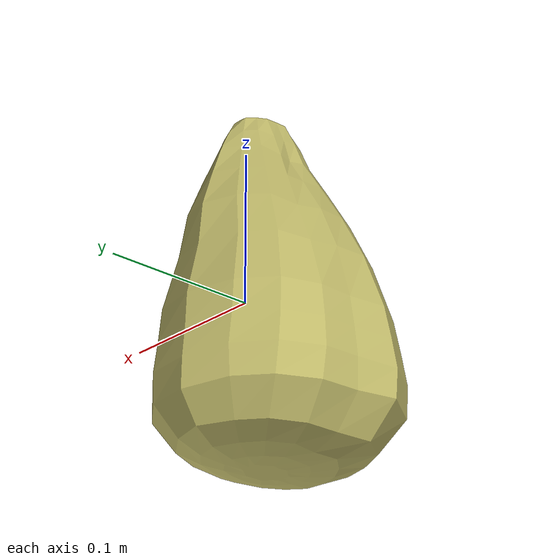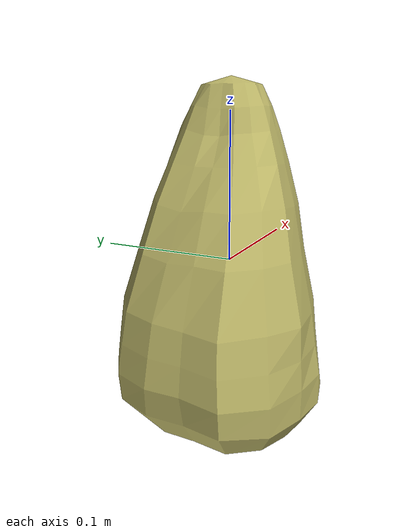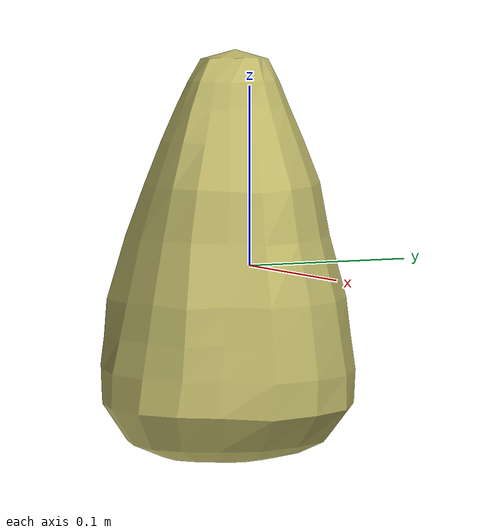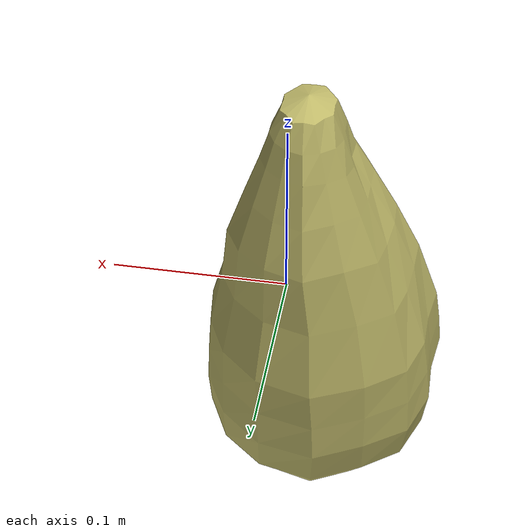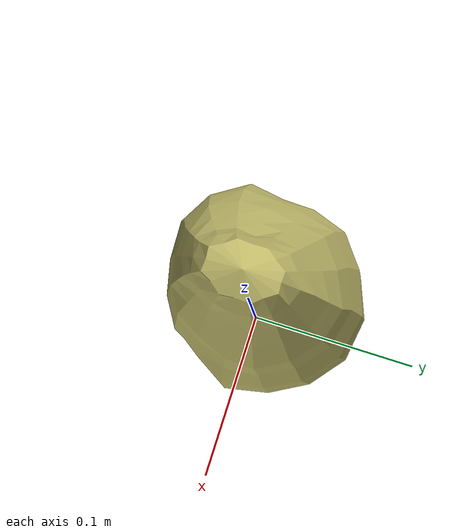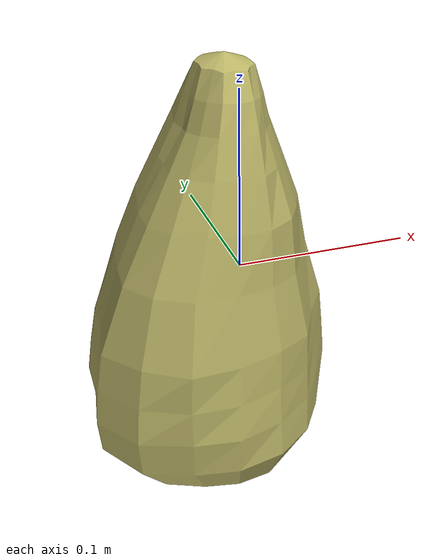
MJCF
<mujoco model="Lettuce_5">
  <compiler autolimits="true" boundmass="0.01" angle="radian"/>
  <default>
    <default class="/">
      <default class="__VISUAL_MJT__">
        <geom contype="0" conaffinity="0" group="0"/>
      </default>
      <default class="__STRUCTURAL_MJT__">
        <geom contype="8" conaffinity="15" group="4" friction="0.90000000000000002 0.90000000000000002 0.001" solref="0.025000000000000001 1" solimp="0.998 0.998 0.001"/>
      </default>
      <default class="__DYNAMIC_MJT__">
        <geom contype="1" conaffinity="15" group="4" friction="0.90000000000000002 0.90000000000000002 0.001" solref="0.025000000000000001 1" solimp="0.998 0.998 0.001"/>
      </default>
    </default>
  </default>
  <asset>
    <texture name="Lettuce1_Mat" type="2d" file="Lettuce1_AlbedoTransparency.png"/>
    <material name="material_Lettuce1_Mat" class="/" texture="Lettuce1_Mat" specular="0.5" shininess="0.5" rgba="0.9945233 1 0.60294119999999995 1"/>
    <mesh name="Lettuce_5_lettuce_a5" class="/" file="Lettuce_5_lettuce_a5/Lettuce_5_lettuce_a5.obj" scale="1 1 1"/>
  </asset>
  <worldbody>
    <body name="Lettuce_5">
      <joint name="Lettuce_5_free" class="/" type="free" pos="0 0 0" axis="0 0 1" stiffness="0" range="0 0" armature="0" damping="0.10000000000000001" frictionloss="0"/>
      <body name="Lettuce_5_lettuce_a5" pos="-0.01 -0.0019 -0.00157" quat="1 0 0 0">
        <geom name="Lettuce_5_lettuce_a5" class="__VISUAL_MJT__" type="mesh" material="material_Lettuce1_Mat" shellinertia="true" mesh="Lettuce_5_lettuce_a5"/>
        <geom name="Lettuce_5_PrimitiveCollider_0" class="__DYNAMIC_MJT__" type="capsule" size="0.065206050872802734 0.032022982835769653" rgba="0 1 0 1" pos="-0.0099999997764825821 0.0019000801257789135 -0.022495461627840996" quat="0.99999999999891198 1.4751396607739272e-06 0 0"/>
        <geom name="Lettuce_5_PrimitiveCollider_1" class="__DYNAMIC_MJT__" type="capsule" size="0.039423398673534393 0.022857680916786194" rgba="0 1 0 1" pos="0.0010000000474974513 -0.0027995144482702017 0.060580480843782425" quat="0.99999999999891198 1.4751396607739272e-06 0 0"/>
      </body>
    </body>
  </worldbody>
</mujoco>
